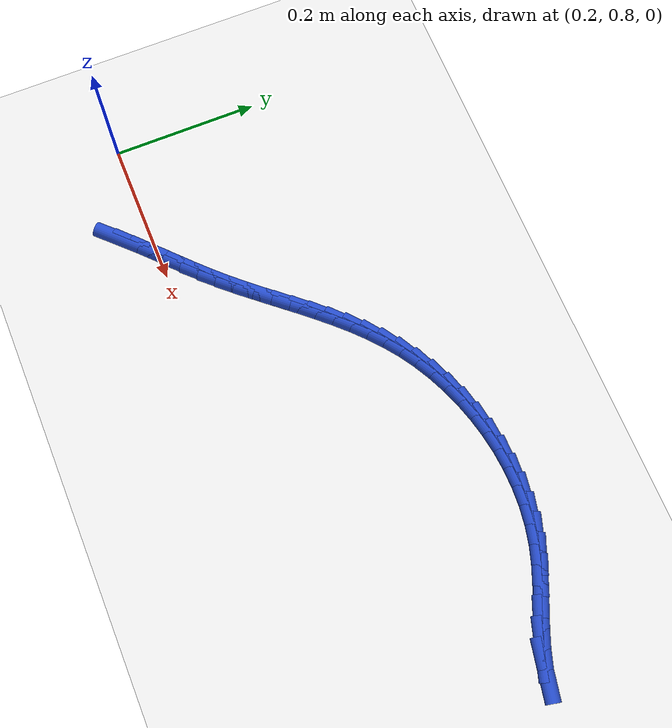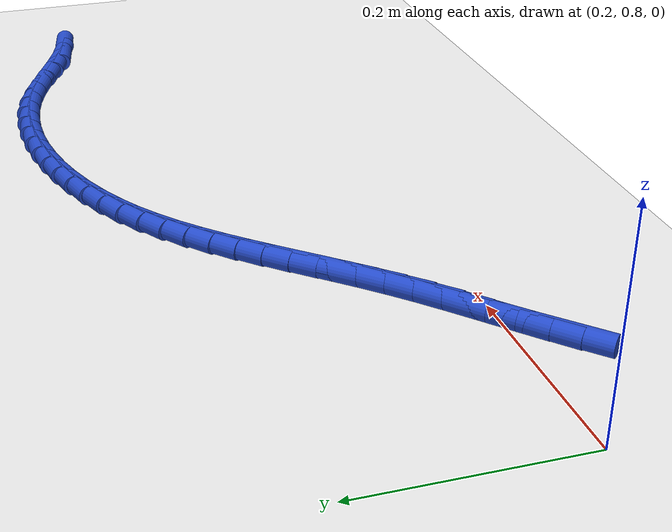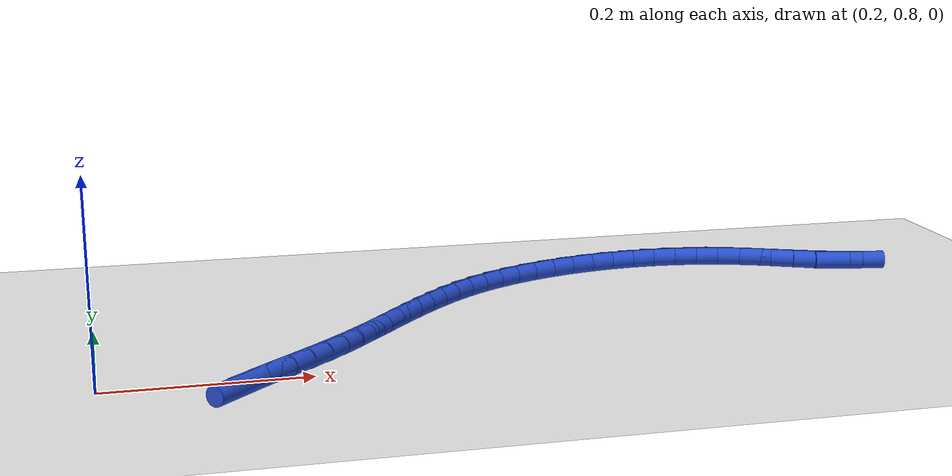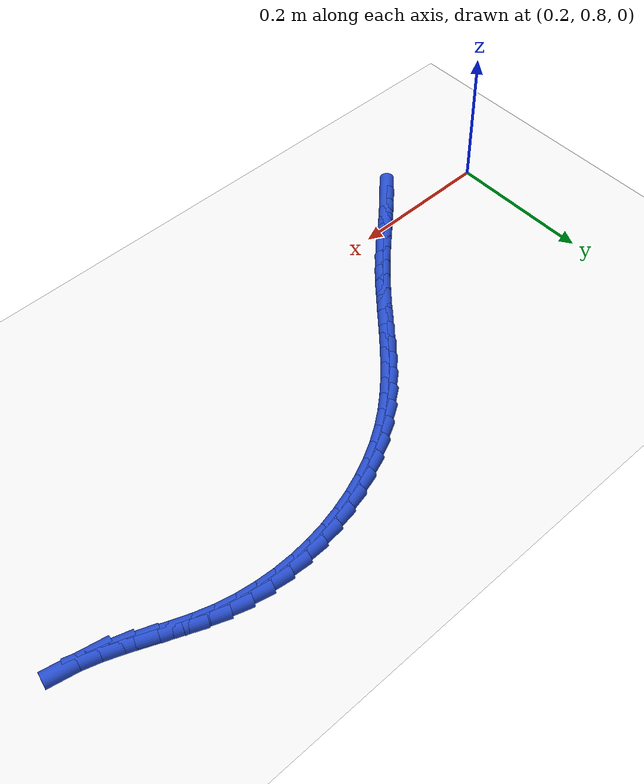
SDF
<sdf version="1.6">
 <world name="default">
  <model name="ground_plane">
   <static>1</static>
   <link name="link">
    <collision name="collision">
     <geometry><plane><normal>0 0 1</normal><size>100 100</size></plane></geometry>
     <surface><friction><ode><mu>100</mu><mu2>50</mu2></ode></friction></surface>
    </collision>
    <visual name="visual">
     <cast_shadows>0</cast_shadows>
     <geometry><plane><normal>0 0 1</normal><size>100 100</size></plane></geometry>
     <material>
      <script><uri>file://media/materials/scripts/gazebo.material</uri><name>Gazebo/WhiteGlow</name></script>
     </material>
    </visual>
   </link>
  </model>
  <model name="line">
   <link name="link_34">
    <pose>0.33012865764824617 0.763310863020906 0.01 0 1.57 0.7847378205954241</pose>
    <collision name="collision">
     <geometry><cylinder><radius>0.01</radius><length>0.08</length></cylinder></geometry>
    </collision>
    <visual name="visual">
     <material>
      <script><name>Gazebo/Blue</name><uri>file://media/materials/scripts/gazebo.material</uri></script>
     </material>
     <geometry><cylinder><radius>0.01</radius><length>0.08</length></cylinder></geometry>
    </visual>
   </link>
   <link name="link_35">
    <pose>0.3482590796600325 0.781417356243072 0.01 0 1.57 0.7608730663376072</pose>
    <collision name="collision">
     <geometry><cylinder><radius>0.01</radius><length>0.08</length></cylinder></geometry>
    </collision>
    <visual name="visual">
     <material>
      <script><name>Gazebo/Blue</name><uri>file://media/materials/scripts/gazebo.material</uri></script>
     </material>
     <geometry><cylinder><radius>0.01</radius><length>0.08</length></cylinder></geometry>
    </visual>
   </link>
   <link name="link_36">
    <pose>0.3669969221248638 0.7992579296056385 0.01 0 1.57 0.7506255127676112</pose>
    <collision name="collision">
     <geometry><cylinder><radius>0.01</radius><length>0.08</length></cylinder></geometry>
    </collision>
    <visual name="visual">
     <material>
      <script><name>Gazebo/Blue</name><uri>file://media/materials/scripts/gazebo.material</uri></script>
     </material>
     <geometry><cylinder><radius>0.01</radius><length>0.08</length></cylinder></geometry>
    </visual>
   </link>
   <link name="link_37">
    <pose>0.38602939319680657 0.8170107623647951 0.01 0 1.57 0.7536369178883096</pose>
    <collision name="collision">
     <geometry><cylinder><radius>0.01</radius><length>0.08</length></cylinder></geometry>
    </collision>
    <visual name="visual">
     <material>
      <script><name>Gazebo/Blue</name><uri>file://media/materials/scripts/gazebo.material</uri></script>
     </material>
     <geometry><cylinder><radius>0.01</radius><length>0.08</length></cylinder></geometry>
    </visual>
   </link>
   <link name="link_38">
    <pose>0.40504370102992737 0.8348540337767315 0.01 0 1.57 0.7698685064474259</pose>
    <collision name="collision">
     <geometry><cylinder><radius>0.01</radius><length>0.08</length></cylinder></geometry>
    </collision>
    <visual name="visual">
     <material>
      <script><name>Gazebo/Blue</name><uri>file://media/materials/scripts/gazebo.material</uri></script>
     </material>
     <geometry><cylinder><radius>0.01</radius><length>0.08</length></cylinder></geometry>
    </visual>
   </link>
   <link name="link_39">
    <pose>0.4237270537782928 0.8529659230976379 0.01 0 1.57 0.7989882519980893</pose>
    <collision name="collision">
     <geometry><cylinder><radius>0.01</radius><length>0.08</length></cylinder></geometry>
    </collision>
    <visual name="visual">
     <material>
      <script><name>Gazebo/Blue</name><uri>file://media/materials/scripts/gazebo.material</uri></script>
     </material>
     <geometry><cylinder><radius>0.01</radius><length>0.08</length></cylinder></geometry>
    </visual>
   </link>
   <link name="link_40">
    <pose>0.4417794189299816 0.8715157458515507 0.01 0 1.57 0.8294605872397544</pose>
    <collision name="collision">
     <geometry><cylinder><radius>0.01</radius><length>0.08</length></cylinder></geometry>
    </collision>
    <visual name="visual">
     <material>
      <script><name>Gazebo/Blue</name><uri>file://media/materials/scripts/gazebo.material</uri></script>
     </material>
     <geometry><cylinder><radius>0.01</radius><length>0.08</length></cylinder></geometry>
    </visual>
   </link>
   <link name="link_41">
    <pose>0.4591561144824855 0.8904954291095858 0.01 0 1.57 0.8502257027616947</pose>
    <collision name="collision">
     <geometry><cylinder><radius>0.01</radius><length>0.08</length></cylinder></geometry>
    </collision>
    <visual name="visual">
     <material>
      <script><name>Gazebo/Blue</name><uri>file://media/materials/scripts/gazebo.material</uri></script>
     </material>
     <geometry><cylinder><radius>0.01</radius><length>0.08</length></cylinder></geometry>
    </visual>
   </link>
   <link name="link_42">
    <pose>0.4760482740108255 0.9097330821358439 0.01 0 1.57 0.8606897198877618</pose>
    <collision name="collision">
     <geometry><cylinder><radius>0.01</radius><length>0.08</length></cylinder></geometry>
    </collision>
    <visual name="visual">
     <material>
      <script><name>Gazebo/Blue</name><uri>file://media/materials/scripts/gazebo.material</uri></script>
     </material>
     <geometry><cylinder><radius>0.01</radius><length>0.08</length></cylinder></geometry>
    </visual>
   </link>
   <link name="link_43">
    <pose>0.4926558756782397 0.9290506699818125 0.01 0 1.57 0.860696949263899</pose>
    <collision name="collision">
     <geometry><cylinder><radius>0.01</radius><length>0.08</length></cylinder></geometry>
    </collision>
    <visual name="visual">
     <material>
      <script><name>Gazebo/Blue</name><uri>file://media/materials/scripts/gazebo.material</uri></script>
     </material>
     <geometry><cylinder><radius>0.01</radius><length>0.08</length></cylinder></geometry>
    </visual>
   </link>
   <link name="link_44">
    <pose>0.5091788976479665 0.9482701576989787 0.01 0 1.57 0.8500862347424606</pose>
    <collision name="collision">
     <geometry><cylinder><radius>0.01</radius><length>0.08</length></cylinder></geometry>
    </collision>
    <visual name="visual">
     <material>
      <script><name>Gazebo/Blue</name><uri>file://media/materials/scripts/gazebo.material</uri></script>
     </material>
     <geometry><cylinder><radius>0.01</radius><length>0.08</length></cylinder></geometry>
    </visual>
   </link>
   <link name="link_45">
    <pose>0.5258173180832444 0.9672135103388305 0.01 0 1.57 0.8286909735105473</pose>
    <collision name="collision">
     <geometry><cylinder><radius>0.01</radius><length>0.08</length></cylinder></geometry>
    </collision>
    <visual name="visual">
     <material>
      <script><name>Gazebo/Blue</name><uri>file://media/materials/scripts/gazebo.material</uri></script>
     </material>
     <geometry><cylinder><radius>0.01</radius><length>0.08</length></cylinder></geometry>
    </visual>
   </link>
   <link name="link_46">
    <pose>0.5427711151473117 0.985702692952855 0.01 0 1.57 0.7963761620971073</pose>
    <collision name="collision">
     <geometry><cylinder><radius>0.01</radius><length>0.08</length></cylinder></geometry>
    </collision>
    <visual name="visual">
     <material>
      <script><name>Gazebo/Blue</name><uri>file://media/materials/scripts/gazebo.material</uri></script>
     </material>
     <geometry><cylinder><radius>0.01</radius><length>0.08</length></cylinder></geometry>
    </visual>
   </link>
   <link name="link_47">
    <pose>0.5602402670034067 1.00355967059254 0.01 0 1.57 0.7531156665826948</pose>
    <collision name="collision">
     <geometry><cylinder><radius>0.01</radius><length>0.08</length></cylinder></geometry>
    </collision>
    <visual name="visual">
     <material>
      <script><name>Gazebo/Blue</name><uri>file://media/materials/scripts/gazebo.material</uri></script>
     </material>
     <geometry><cylinder><radius>0.01</radius><length>0.08</length></cylinder></geometry>
    </visual>
   </link>
   <link name="link_48">
    <pose>0.5784247518147678 1.0206064083093729 0.01 0 1.57 0.6991088813412948</pose>
    <collision name="collision">
     <geometry><cylinder><radius>0.01</radius><length>0.08</length></cylinder></geometry>
    </collision>
    <visual name="visual">
     <material>
      <script><name>Gazebo/Blue</name><uri>file://media/materials/scripts/gazebo.material</uri></script>
     </material>
     <geometry><cylinder><radius>0.01</radius><length>0.08</length></cylinder></geometry>
    </visual>
   </link>
   <link name="link_49">
    <pose>0.5975245477446336 1.0366648711548414 0.01 0 1.57 0.6349250009315921</pose>
    <collision name="collision">
     <geometry><cylinder><radius>0.01</radius><length>0.08</length></cylinder></geometry>
    </collision>
    <visual name="visual">
     <material>
      <script><name>Gazebo/Blue</name><uri>file://media/materials/scripts/gazebo.material</uri></script>
     </material>
     <geometry><cylinder><radius>0.01</radius><length>0.08</length></cylinder></geometry>
    </visual>
   </link>
   <link name="link_50">
    <pose>0.6177396329562421 1.051557024180433 0.01 0 1.57 0.5632501137522673</pose>
    <collision name="collision">
     <geometry><cylinder><radius>0.01</radius><length>0.08</length></cylinder></geometry>
    </collision>
    <visual name="visual">
     <material>
      <script><name>Gazebo/Blue</name><uri>file://media/materials/scripts/gazebo.material</uri></script>
     </material>
     <geometry><cylinder><radius>0.01</radius><length>0.08</length></cylinder></geometry>
    </visual>
   </link>
   <link name="link_51">
    <pose>0.6392177955682968 1.0651201921469313 0.01 0 1.57 0.49220218962726064</pose>
    <collision name="collision">
     <geometry><cylinder><radius>0.01</radius><length>0.08</length></cylinder></geometry>
    </collision>
    <visual name="visual">
     <material>
      <script><name>Gazebo/Blue</name><uri>file://media/materials/scripts/gazebo.material</uri></script>
     </material>
     <geometry><cylinder><radius>0.01</radius><length>0.08</length></cylinder></geometry>
    </visual>
   </link>
   <link name="link_52">
    <pose>0.6618635416380242 1.0772632985610977 0.01 0 1.57 0.4232640055669498</pose>
    <collision name="collision">
     <geometry><cylinder><radius>0.01</radius><length>0.08</length></cylinder></geometry>
    </collision>
    <visual name="visual">
     <material>
      <script><name>Gazebo/Blue</name><uri>file://media/materials/scripts/gazebo.material</uri></script>
     </material>
     <geometry><cylinder><radius>0.01</radius><length>0.08</length></cylinder></geometry>
    </visual>
   </link>
   <link name="link_53">
    <pose>0.6855105450625127 1.087916113077618 0.01 0 1.57 0.3556002629308807</pose>
    <collision name="collision">
     <geometry><cylinder><radius>0.01</radius><length>0.08</length></cylinder></geometry>
    </collision>
    <visual name="visual">
     <material>
      <script><name>Gazebo/Blue</name><uri>file://media/materials/scripts/gazebo.material</uri></script>
     </material>
     <geometry><cylinder><radius>0.01</radius><length>0.08</length></cylinder></geometry>
    </visual>
   </link>
   <link name="link_54">
    <pose>0.7099924716709883 1.0970084077255775 0.01 0 1.57 0.2884041937840545</pose>
    <collision name="collision">
     <geometry><cylinder><radius>0.01</radius><length>0.08</length></cylinder></geometry>
    </collision>
    <visual name="visual">
     <material>
      <script><name>Gazebo/Blue</name><uri>file://media/materials/scripts/gazebo.material</uri></script>
     </material>
     <geometry><cylinder><radius>0.01</radius><length>0.08</length></cylinder></geometry>
    </visual>
   </link>
   <link name="link_55">
    <pose>0.7351429872926771 1.1044699545340617 0.01 0 1.57 0.22089504281320152</pose>
    <collision name="collision">
     <geometry><cylinder><radius>0.01</radius><length>0.08</length></cylinder></geometry>
    </collision>
    <visual name="visual">
     <material>
      <script><name>Gazebo/Blue</name><uri>file://media/materials/scripts/gazebo.material</uri></script>
     </material>
     <geometry><cylinder><radius>0.01</radius><length>0.08</length></cylinder></geometry>
    </visual>
   </link>
   <link name="link_56">
    <pose>0.7607957577568049 1.1102305255321552 0.01 0 1.57 0.15231503734382207</pose>
    <collision name="collision">
     <geometry><cylinder><radius>0.01</radius><length>0.08</length></cylinder></geometry>
    </collision>
    <visual name="visual">
     <material>
      <script><name>Gazebo/Blue</name><uri>file://media/materials/scripts/gazebo.material</uri></script>
     </material>
     <geometry><cylinder><radius>0.01</radius><length>0.08</length></cylinder></geometry>
    </visual>
   </link>
   <link name="link_57">
    <pose>0.7867844488925975 1.1142198927489433 0.01 0 1.57 0.08192922370429563</pose>
    <collision name="collision">
     <geometry><cylinder><radius>0.01</radius><length>0.08</length></cylinder></geometry>
    </collision>
    <visual name="visual">
     <material>
      <script><name>Gazebo/Blue</name><uri>file://media/materials/scripts/gazebo.material</uri></script>
     </material>
     <geometry><cylinder><radius>0.01</radius><length>0.08</length></cylinder></geometry>
    </visual>
   </link>
   <link name="link_58">
    <pose>0.812942726529281 1.116367828213511 0.01 0 1.57 0.009031173558403306</pose>
    <collision name="collision">
     <geometry><cylinder><radius>0.01</radius><length>0.08</length></cylinder></geometry>
    </collision>
    <visual name="visual">
     <material>
      <script><name>Gazebo/Blue</name><uri>file://media/materials/scripts/gazebo.material</uri></script>
     </material>
     <geometry><cylinder><radius>0.01</radius><length>0.08</length></cylinder></geometry>
    </visual>
   </link>
   <link name="link_59">
    <pose>0.839104256496082 1.1166041039549444 0.01 0 1.57 -0.06704230357622556</pose>
    <collision name="collision">
     <geometry><cylinder><radius>0.01</radius><length>0.08</length></cylinder></geometry>
    </collision>
    <visual name="visual">
     <material>
      <script><name>Gazebo/Blue</name><uri>file://media/materials/scripts/gazebo.material</uri></script>
     </material>
     <geometry><cylinder><radius>0.01</radius><length>0.08</length></cylinder></geometry>
    </visual>
   </link>
   <link name="link_60">
    <pose>0.8651027046222256 1.1148584920023281 0.01 0 1.57 -0.14688424052069246</pose>
    <collision name="collision">
     <geometry><cylinder><radius>0.01</radius><length>0.08</length></cylinder></geometry>
    </collision>
    <visual name="visual">
     <material>
      <script><name>Gazebo/Blue</name><uri>file://media/materials/scripts/gazebo.material</uri></script>
     </material>
     <geometry><cylinder><radius>0.01</radius><length>0.08</length></cylinder></geometry>
    </visual>
   </link>
   <link name="link_61">
    <pose>0.8907717367369385 1.1110607643847477 0.01 0 1.57 -0.23097571276008405</pose>
    <collision name="collision">
     <geometry><cylinder><radius>0.01</radius><length>0.08</length></cylinder></geometry>
    </collision>
    <visual name="visual">
     <material>
      <script><name>Gazebo/Blue</name><uri>file://media/materials/scripts/gazebo.material</uri></script>
     </material>
     <geometry><cylinder><radius>0.01</radius><length>0.08</length></cylinder></geometry>
    </visual>
   </link>
   <link name="link_62">
    <pose>0.9159450186694463 1.1051406931312875 0.01 0 1.57 -0.3174484262086904</pose>
    <collision name="collision">
     <geometry><cylinder><radius>0.01</radius><length>0.08</length></cylinder></geometry>
    </collision>
    <visual name="visual">
     <material>
      <script><name>Gazebo/Blue</name><uri>file://media/materials/scripts/gazebo.material</uri></script>
     </material>
     <geometry><cylinder><radius>0.01</radius><length>0.08</length></cylinder></geometry>
    </visual>
   </link>
   <link name="link_63">
    <pose>0.9404768165128634 1.0970805254697484 0.01 0 1.57 -0.3837631327545001</pose>
    <collision name="collision">
     <geometry><cylinder><radius>0.01</radius><length>0.08</length></cylinder></geometry>
    </collision>
    <visual name="visual">
     <material>
      <script><name>Gazebo/Blue</name><uri>file://media/materials/scripts/gazebo.material</uri></script>
     </material>
     <geometry><cylinder><radius>0.01</radius><length>0.08</length></cylinder></geometry>
    </visual>
   </link>
   <link name="link_64">
    <pose>0.9644350003025722 1.0874066234692479 0.01 0 1.57 -0.4167957000101921</pose>
    <collision name="collision">
     <geometry><cylinder><radius>0.01</radius><length>0.08</length></cylinder></geometry>
    </collision>
    <visual name="visual">
     <material>
      <script><name>Gazebo/Blue</name><uri>file://media/materials/scripts/gazebo.material</uri></script>
     </material>
     <geometry><cylinder><radius>0.01</radius><length>0.08</length></cylinder></geometry>
    </visual>
   </link>
   <link name="link_65">
    <pose>0.9880138815711068 1.0769674345238682 0.01 0 1.57 -0.41657429461555406</pose>
    <collision name="collision">
     <geometry><cylinder><radius>0.01</radius><length>0.08</length></cylinder></geometry>
    </collision>
    <visual name="visual">
     <material>
      <script><name>Gazebo/Blue</name><uri>file://media/materials/scripts/gazebo.material</uri></script>
     </material>
     <geometry><cylinder><radius>0.01</radius><length>0.08</length></cylinder></geometry>
    </visual>
   </link>
   <link name="link_66">
    <pose>1.0114094226993269 1.0666156112453709 0.01 0 1.57 -0.3822927019749058</pose>
    <collision name="collision">
     <geometry><cylinder><radius>0.01</radius><length>0.08</length></cylinder></geometry>
    </collision>
    <visual name="visual">
     <material>
      <script><name>Gazebo/Blue</name><uri>file://media/materials/scripts/gazebo.material</uri></script>
     </material>
     <geometry><cylinder><radius>0.01</radius><length>0.08</length></cylinder></geometry>
    </visual>
   </link>
   <link name="link_67">
    <pose>1.0348175860680902 1.0572038062455151 0.01 0 1.57 -0.31207388842749684</pose>
    <collision name="collision">
     <geometry><cylinder><radius>0.01</radius><length>0.08</length></cylinder></geometry>
    </collision>
    <visual name="visual">
     <material>
      <script><name>Gazebo/Blue</name><uri>file://media/materials/scripts/gazebo.material</uri></script>
     </material>
     <geometry><cylinder><radius>0.01</radius><length>0.08</length></cylinder></geometry>
    </visual>
   </link>
   <link name="link_68">
    <pose>1.0584343340582565 1.0495846721360607 0.01 0 1.57 -0.2041731672024293</pose>
    <collision name="collision">
     <geometry><cylinder><radius>0.01</radius><length>0.08</length></cylinder></geometry>
    </collision>
    <visual name="visual">
     <material>
      <script><name>Gazebo/Blue</name><uri>file://media/materials/scripts/gazebo.material</uri></script>
     </material>
     <geometry><cylinder><radius>0.01</radius><length>0.08</length></cylinder></geometry>
    </visual>
   </link>
  </model>
 </world>
</sdf>
